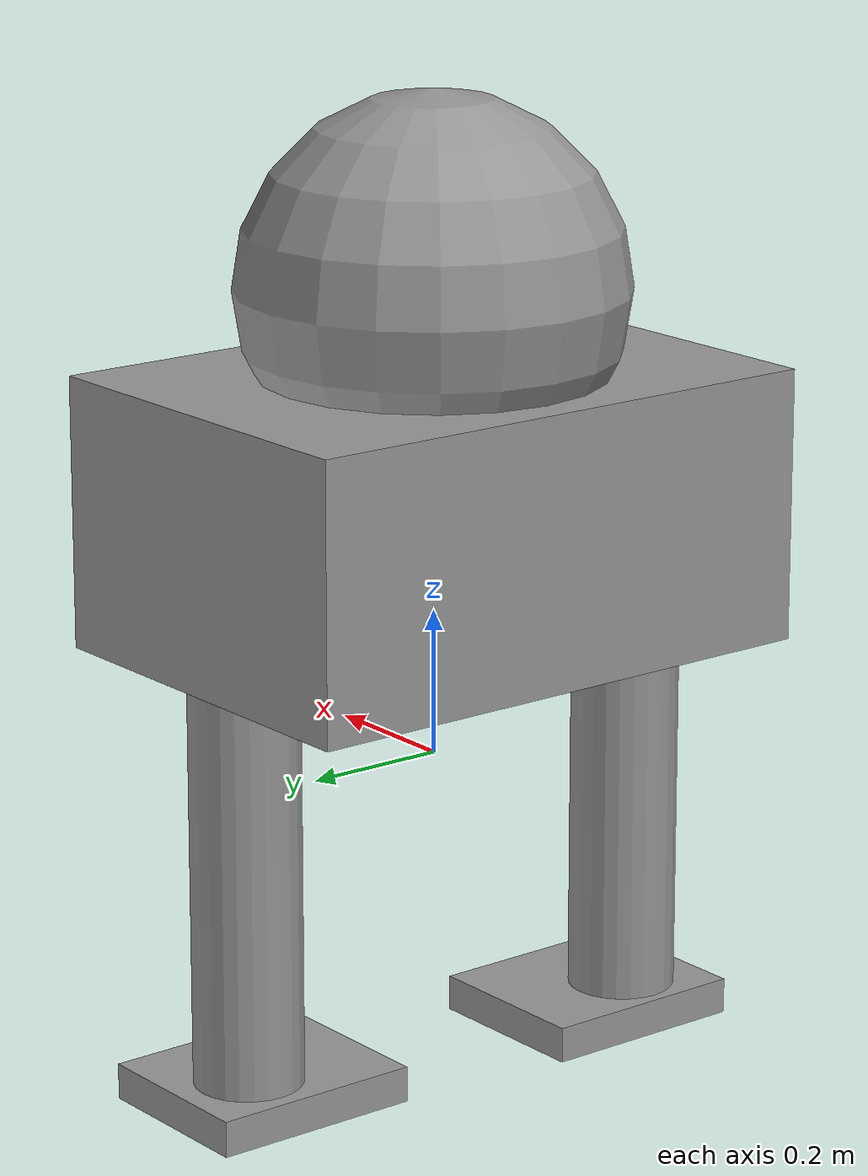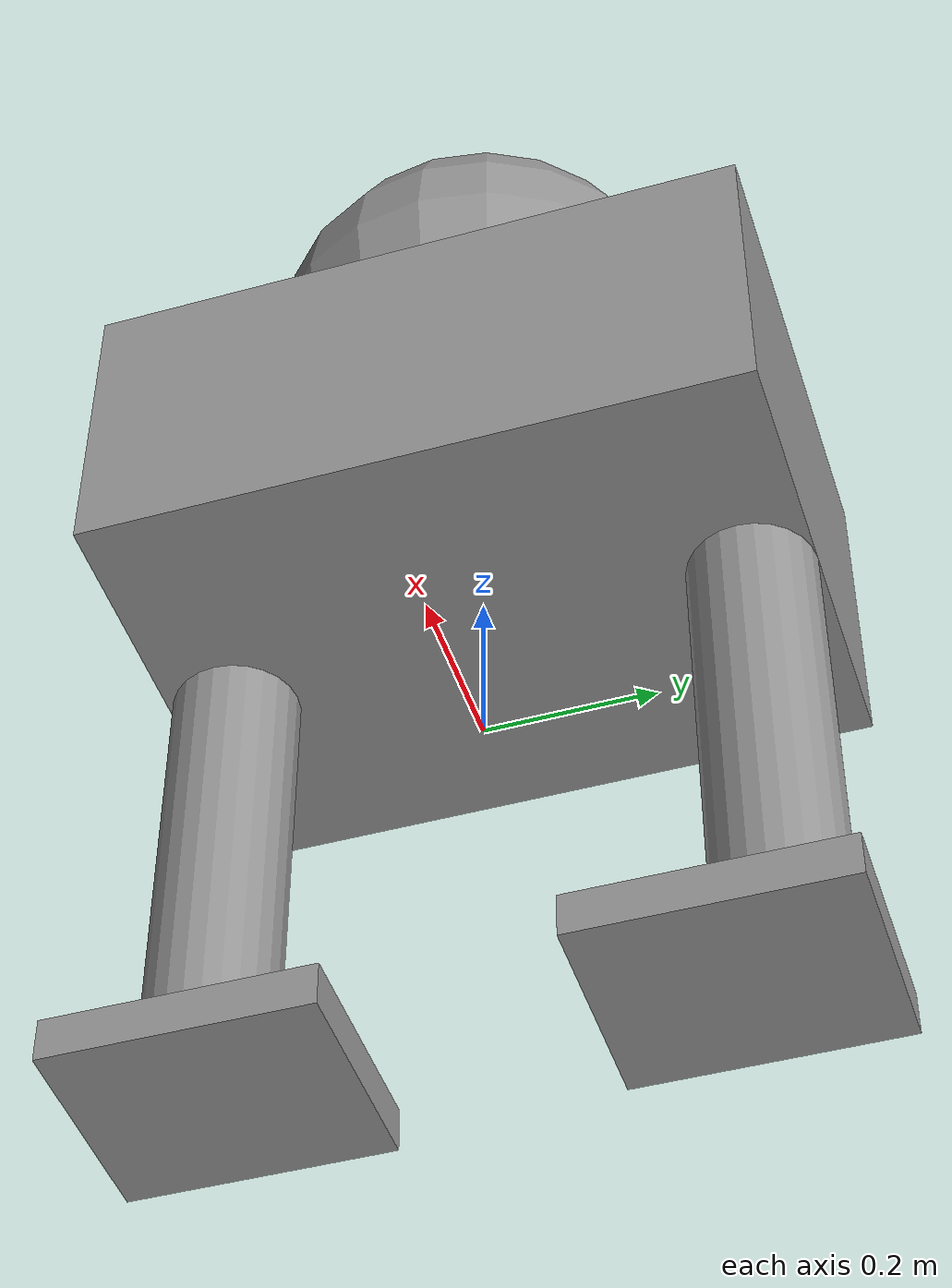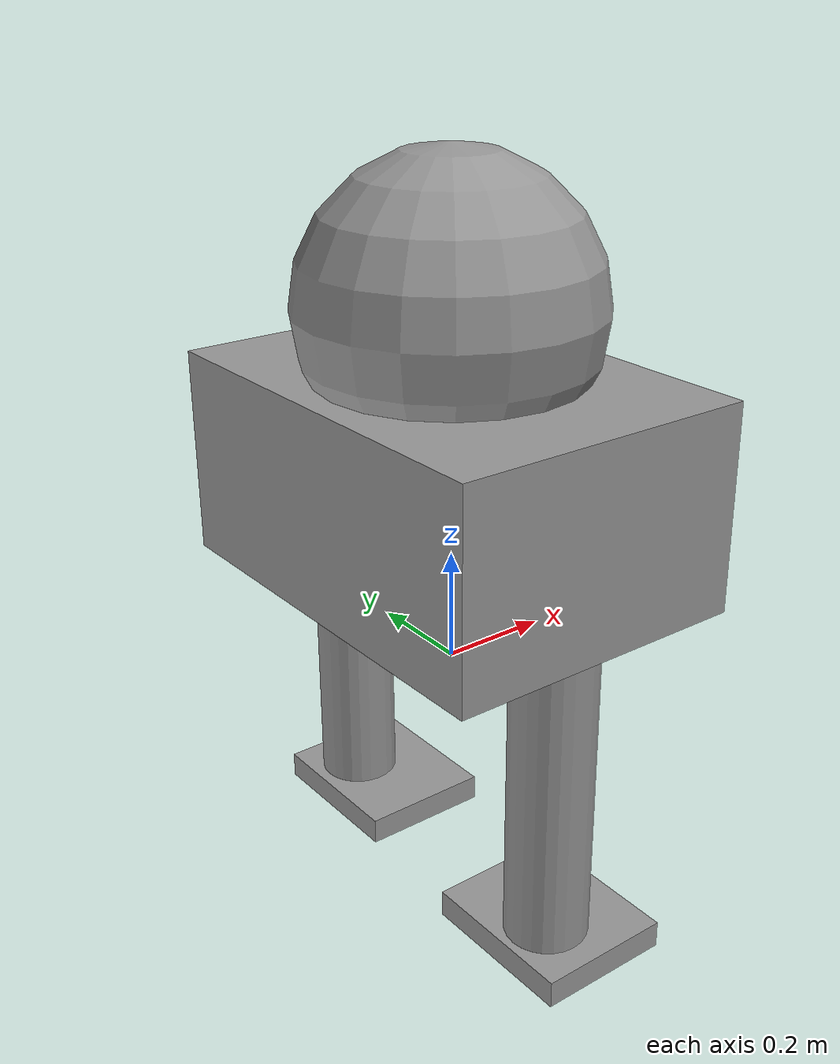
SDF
<?xml version='1.0'?>
<sdf version='1.6'>
  <model name='bot'>
    <link name='link_0'>
      <inertial>
        <mass>0.163841</mass>
        <inertia>
          <ixx>0.0101729</ixx>
          <ixy>0</ixy>
          <ixz>0</ixz>
          <iyy>0.0062362</iyy>
          <iyz>0</iyz>
          <izz>0.0125813</izz>
        </inertia>
        <pose frame=''>0 0 0.75 0 -0 0</pose>
      </inertial>
      <pose frame=''>2e-06 0.001849 0.341931 0 -0 0</pose>
      <gravity>1</gravity>
      <self_collide>0</self_collide>
      <kinematic>0</kinematic>
      <enable_wind>0</enable_wind>
      <visual name='visual'>
        <pose frame=''>0 0 0 0 -0 0</pose>
        <geometry>
          <box>
            <size>0.562647 0.777756 0.374404</size>
          </box>
        </geometry>
        <material>
          <lighting>1</lighting>
          <script>
            <uri>file://media/materials/scripts/gazebo.material</uri>
            <name>Gazebo/Grey</name>
          </script>
          <shader type='vertex'>
            <normal_map>__default__</normal_map>
          </shader>
          <ambient>0.3 0.3 0.3 1</ambient>
          <diffuse>0.7 0.7 0.7 1</diffuse>
          <specular>0.01 0.01 0.01 1</specular>
          <emissive>0 0 0 1</emissive>
        </material>
        <transparency>0</transparency>
        <cast_shadows>1</cast_shadows>
      </visual>
      <collision name='collision'>
        <laser_retro>0</laser_retro>
        <max_contacts>10</max_contacts>
        <pose frame=''>0 0 0 0 -0 0</pose>
        <geometry>
          <box>
            <size>0.562647 0.777756 0.374404</size>
          </box>
        </geometry>
        <surface>
          <friction>
            <ode>
              <mu>1</mu>
              <mu2>1</mu2>
              <fdir1>0 0 0</fdir1>
              <slip1>0</slip1>
              <slip2>0</slip2>
            </ode>
            <torsional>
              <coefficient>1</coefficient>
              <patch_radius>0</patch_radius>
              <surface_radius>0</surface_radius>
              <use_patch_radius>1</use_patch_radius>
              <ode>
                <slip>0</slip>
              </ode>
            </torsional>
          </friction>
          <bounce>
            <restitution_coefficient>0</restitution_coefficient>
            <threshold>1e+06</threshold>
          </bounce>
          <contact>
            <collide_without_contact>0</collide_without_contact>
            <collide_without_contact_bitmask>1</collide_without_contact_bitmask>
            <collide_bitmask>1</collide_bitmask>
            <ode>
              <soft_cfm>0</soft_cfm>
              <soft_erp>0.2</soft_erp>
              <kp>1e+13</kp>
              <kd>1</kd>
              <max_vel>0.01</max_vel>
              <min_depth>0</min_depth>
            </ode>
            <bullet>
              <split_impulse>1</split_impulse>
              <split_impulse_penetration_threshold>-0.01</split_impulse_penetration_threshold>
              <soft_cfm>0</soft_cfm>
              <soft_erp>0.2</soft_erp>
              <kp>1e+13</kp>
              <kd>1</kd>
            </bullet>
          </contact>
        </surface>
      </collision>
    </link>
    <link name='link_1'>
      <inertial>
        <mass>0.0187346</mass>
        <inertia>
          <ixx>0.0006021</ixx>
          <ixy>0</ixy>
          <ixz>0</ixz>
          <iyy>0.0006021</iyy>
          <iyz>0</iyz>
          <izz>7.273e-05</izz>
        </inertia>
        <pose frame=''>0 0 0 0 -0 0</pose>
      </inertial>
      <pose frame=''>-0.032498 -0.312029 -0.145271 0 -0 0</pose>
      <gravity>1</gravity>
      <self_collide>0</self_collide>
      <kinematic>0</kinematic>
      <enable_wind>0</enable_wind>
      <visual name='visual'>
        <pose frame=''>0 0 0 0 -0 0</pose>
        <geometry>
          <cylinder>
            <radius>0.075</radius>
            <length>0.6</length>
          </cylinder>
        </geometry>
        <material>
          <lighting>1</lighting>
          <script>
            <uri>file://media/materials/scripts/gazebo.material</uri>
            <name>Gazebo/Grey</name>
          </script>
          <shader type='vertex'>
            <normal_map>__default__</normal_map>
          </shader>
          <ambient>0.3 0.3 0.3 1</ambient>
          <diffuse>0.7 0.7 0.7 1</diffuse>
          <specular>0.01 0.01 0.01 1</specular>
          <emissive>0 0 0 1</emissive>
        </material>
        <transparency>0</transparency>
        <cast_shadows>1</cast_shadows>
      </visual>
      <collision name='collision'>
        <laser_retro>0</laser_retro>
        <max_contacts>10</max_contacts>
        <pose frame=''>0 0 0 0 -0 0</pose>
        <geometry>
          <cylinder>
            <radius>0.075</radius>
            <length>0.6</length>
          </cylinder>
        </geometry>
        <surface>
          <friction>
            <ode>
              <mu>1</mu>
              <mu2>1</mu2>
              <fdir1>0 0 0</fdir1>
              <slip1>0</slip1>
              <slip2>0</slip2>
            </ode>
            <torsional>
              <coefficient>1</coefficient>
              <patch_radius>0</patch_radius>
              <surface_radius>0</surface_radius>
              <use_patch_radius>1</use_patch_radius>
              <ode>
                <slip>0</slip>
              </ode>
            </torsional>
          </friction>
          <bounce>
            <restitution_coefficient>0</restitution_coefficient>
            <threshold>1e+06</threshold>
          </bounce>
          <contact>
            <collide_without_contact>0</collide_without_contact>
            <collide_without_contact_bitmask>1</collide_without_contact_bitmask>
            <collide_bitmask>1</collide_bitmask>
            <ode>
              <soft_cfm>0</soft_cfm>
              <soft_erp>0.2</soft_erp>
              <kp>1e+13</kp>
              <kd>1</kd>
              <max_vel>0.01</max_vel>
              <min_depth>0</min_depth>
            </ode>
            <bullet>
              <split_impulse>1</split_impulse>
              <split_impulse_penetration_threshold>-0.01</split_impulse_penetration_threshold>
              <soft_cfm>0</soft_cfm>
              <soft_erp>0.2</soft_erp>
              <kp>1e+13</kp>
              <kd>1</kd>
            </bullet>
          </contact>
        </surface>
      </collision>
    </link>
    <link name='link_1_clone'>
      <inertial>
        <mass>0.0187346</mass>
        <inertia>
          <ixx>0.000588384</ixx>
          <ixy>0</ixy>
          <ixz>0</ixz>
          <iyy>0.000588384</iyy>
          <iyz>0</iyz>
          <izz>5.26912e-05</izz>
        </inertia>
        <pose frame=''>0 0 0 0 -0 0</pose>
      </inertial>
      <pose frame=''>2e-06 0.315727 -0.145271 0 -0 0</pose>
      <gravity>1</gravity>
      <self_collide>0</self_collide>
      <kinematic>0</kinematic>
      <enable_wind>0</enable_wind>
      <visual name='visual'>
        <pose frame=''>0 0 0 0 -0 0</pose>
        <geometry>
          <cylinder>
            <radius>0.075</radius>
            <length>0.6</length>
          </cylinder>
        </geometry>
        <material>
          <lighting>1</lighting>
          <script>
            <uri>file://media/materials/scripts/gazebo.material</uri>
            <name>Gazebo/Grey</name>
          </script>
          <shader type='vertex'>
            <normal_map>__default__</normal_map>
          </shader>
          <ambient>0.3 0.3 0.3 1</ambient>
          <diffuse>0.7 0.7 0.7 1</diffuse>
          <specular>0.01 0.01 0.01 1</specular>
          <emissive>0 0 0 1</emissive>
        </material>
        <transparency>0</transparency>
        <cast_shadows>1</cast_shadows>
      </visual>
      <collision name='collision'>
        <laser_retro>0</laser_retro>
        <max_contacts>10</max_contacts>
        <pose frame=''>0 0 0 0 -0 0</pose>
        <geometry>
          <cylinder>
            <radius>0.075</radius>
            <length>0.6</length>
          </cylinder>
        </geometry>
        <surface>
          <friction>
            <ode>
              <mu>1</mu>
              <mu2>1</mu2>
              <fdir1>0 0 0</fdir1>
              <slip1>0</slip1>
              <slip2>0</slip2>
            </ode>
            <torsional>
              <coefficient>1</coefficient>
              <patch_radius>0</patch_radius>
              <surface_radius>0</surface_radius>
              <use_patch_radius>1</use_patch_radius>
              <ode>
                <slip>0</slip>
              </ode>
            </torsional>
          </friction>
          <bounce>
            <restitution_coefficient>0</restitution_coefficient>
            <threshold>1e+06</threshold>
          </bounce>
          <contact>
            <collide_without_contact>0</collide_without_contact>
            <collide_without_contact_bitmask>1</collide_without_contact_bitmask>
            <collide_bitmask>1</collide_bitmask>
            <ode>
              <soft_cfm>0</soft_cfm>
              <soft_erp>0.2</soft_erp>
              <kp>1e+13</kp>
              <kd>1</kd>
              <max_vel>0.01</max_vel>
              <min_depth>0</min_depth>
            </ode>
            <bullet>
              <split_impulse>1</split_impulse>
              <split_impulse_penetration_threshold>-0.01</split_impulse_penetration_threshold>
              <soft_cfm>0</soft_cfm>
              <soft_erp>0.2</soft_erp>
              <kp>1e+13</kp>
              <kd>1</kd>
            </bullet>
          </contact>
        </surface>
      </collision>
    </link>
    <link name='link_3'>
      <inertial>
        <mass>0.00152232</mass>
        <inertia>
          <ixx>2.28e-06</ixx>
          <ixy>0</ixy>
          <ixz>0</ixz>
          <iyy>6.66e-06</iyy>
          <iyz>0</iyz>
          <izz>8.12e-06</izz>
        </inertia>
        <pose frame=''>0 0 0 0 -0 0</pose>
      </inertial>
      <pose frame=''>0.029437 0.272135 -0.42295 0 -0 0</pose>
      <self_collide>0</self_collide>
      <enable_wind>0</enable_wind>
      <kinematic>0</kinematic>
      <gravity>1</gravity>
      <visual name='visual'>
        <pose frame=''>0 0 0 0 -0 0</pose>
        <geometry>
          <box>
            <size>0.25 0.299999 0.05</size>
          </box>
        </geometry>
        <material>
          <lighting>1</lighting>
          <script>
            <uri>file://media/materials/scripts/gazebo.material</uri>
            <name>Gazebo/Grey</name>
          </script>
          <emissive>0 0 0 1</emissive>
          <shader type='vertex'>
            <normal_map>__default__</normal_map>
          </shader>
          <ambient>0.3 0.3 0.3 1</ambient>
          <diffuse>0.7 0.7 0.7 1</diffuse>
          <specular>0.01 0.01 0.01 1</specular>
        </material>
        <transparency>0</transparency>
        <cast_shadows>1</cast_shadows>
      </visual>
      <collision name='collision'>
        <laser_retro>0</laser_retro>
        <max_contacts>10</max_contacts>
        <pose frame=''>0 0 0 0 -0 0</pose>
        <geometry>
          <box>
            <size>0.25 0.3 0.05</size>
          </box>
        </geometry>
        <surface>
          <friction>
            <ode>
              <mu>1</mu>
              <mu2>1</mu2>
              <fdir1>0 0 0</fdir1>
              <slip1>0</slip1>
              <slip2>0</slip2>
            </ode>
            <torsional>
              <coefficient>1</coefficient>
              <patch_radius>0</patch_radius>
              <surface_radius>0</surface_radius>
              <use_patch_radius>1</use_patch_radius>
              <ode>
                <slip>0</slip>
              </ode>
            </torsional>
          </friction>
          <bounce>
            <restitution_coefficient>0</restitution_coefficient>
            <threshold>1e+06</threshold>
          </bounce>
          <contact>
            <collide_without_contact>0</collide_without_contact>
            <collide_without_contact_bitmask>1</collide_without_contact_bitmask>
            <collide_bitmask>1</collide_bitmask>
            <ode>
              <soft_cfm>0</soft_cfm>
              <soft_erp>0.2</soft_erp>
              <kp>1e+13</kp>
              <kd>1</kd>
              <max_vel>0.01</max_vel>
              <min_depth>0</min_depth>
            </ode>
            <bullet>
              <split_impulse>1</split_impulse>
              <split_impulse_penetration_threshold>-0.01</split_impulse_penetration_threshold>
              <soft_cfm>0</soft_cfm>
              <soft_erp>0.2</soft_erp>
              <kp>1e+13</kp>
              <kd>1</kd>
            </bullet>
          </contact>
        </surface>
      </collision>
    </link>
    <link name='link_3_clone'>
      <inertial>
        <mass>0.00098487</mass>
        <inertia>
          <ixx>1.08e-06</ixx>
          <ixy>0</ixy>
          <ixz>0</ixz>
          <iyy>3.74e-06</iyy>
          <iyz>0</iyz>
          <izz>4.5e-06</izz>
        </inertia>
        <pose frame=''>0 0 0 0 -0 0</pose>
      </inertial>
      <pose frame=''>0.003067 -0.279529 -0.42295 0 -0 0</pose>
      <self_collide>0</self_collide>
      <enable_wind>0</enable_wind>
      <kinematic>0</kinematic>
      <gravity>1</gravity>
      <visual name='visual'>
        <pose frame=''>0 0 0 0 -0 0</pose>
        <geometry>
          <box>
            <size>0.25 0.3 0.05</size>
          </box>
        </geometry>
        <material>
          <lighting>1</lighting>
          <script>
            <uri>file://media/materials/scripts/gazebo.material</uri>
            <name>Gazebo/Grey</name>
          </script>
          <emissive>0 0 0 1</emissive>
          <shader type='pixel'>
            <normal_map>__default__</normal_map>
          </shader>
          <ambient>0.3 0.3 0.3 1</ambient>
          <diffuse>0.7 0.7 0.7 1</diffuse>
          <specular>0.01 0.01 0.01 1</specular>
        </material>
        <transparency>0</transparency>
        <cast_shadows>1</cast_shadows>
      </visual>
      <collision name='collision'>
        <laser_retro>0</laser_retro>
        <max_contacts>10</max_contacts>
        <pose frame=''>0 0 0 0 -0 0</pose>
        <geometry>
          <box>
            <size>0.25 0.3 0.05</size>
          </box>
        </geometry>
        <surface>
          <friction>
            <ode>
              <mu>1</mu>
              <mu2>1</mu2>
              <fdir1>0 0 0</fdir1>
              <slip1>0</slip1>
              <slip2>0</slip2>
            </ode>
            <torsional>
              <coefficient>1</coefficient>
              <patch_radius>0</patch_radius>
              <surface_radius>0</surface_radius>
              <use_patch_radius>1</use_patch_radius>
              <ode>
                <slip>0</slip>
              </ode>
            </torsional>
          </friction>
          <bounce>
            <restitution_coefficient>0</restitution_coefficient>
            <threshold>1e+06</threshold>
          </bounce>
          <contact>
            <collide_without_contact>0</collide_without_contact>
            <collide_without_contact_bitmask>1</collide_without_contact_bitmask>
            <collide_bitmask>1</collide_bitmask>
            <ode>
              <soft_cfm>0</soft_cfm>
              <soft_erp>0.2</soft_erp>
              <kp>1e+13</kp>
              <kd>1</kd>
              <max_vel>0.01</max_vel>
              <min_depth>0</min_depth>
            </ode>
            <bullet>
              <split_impulse>1</split_impulse>
              <split_impulse_penetration_threshold>-0.01</split_impulse_penetration_threshold>
              <soft_cfm>0</soft_cfm>
              <soft_erp>0.2</soft_erp>
              <kp>1e+13</kp>
              <kd>1</kd>
            </bullet>
          </contact>
        </surface>
      </collision>
    </link>
    <link name='link_4'>
      <inertial>
        <mass>0.149515</mass>
        <inertia>
          <ixx>0.0042119</ixx>
          <ixy>0</ixy>
          <ixz>0</ixz>
          <iyy>0.0042119</iyy>
          <iyz>0</iyz>
          <izz>0.0042119</izz>
        </inertia>
        <pose frame=''>0 0 0 0 -0 0</pose>
      </inertial>
      <pose frame=''>2e-06 0.001849 0.641931 0 -0 0</pose>
      <gravity>1</gravity>
      <self_collide>0</self_collide>
      <kinematic>0</kinematic>
      <enable_wind>0</enable_wind>
      <visual name='visual'>
        <pose frame=''>0 0 0 0 -0 0</pose>
        <geometry>
          <sphere>
            <radius>0.265379</radius>
          </sphere>
        </geometry>
        <material>
          <lighting>1</lighting>
          <script>
            <uri>file://media/materials/scripts/gazebo.material</uri>
            <name>Gazebo/Grey</name>
          </script>
          <shader type='vertex'>
            <normal_map>__default__</normal_map>
          </shader>
          <emissive>0 0 0 1</emissive>
        </material>
        <transparency>0</transparency>
        <cast_shadows>1</cast_shadows>
      </visual>
      <collision name='collision'>
        <laser_retro>0</laser_retro>
        <max_contacts>10</max_contacts>
        <pose frame=''>0 0 0 0 -0 0</pose>
        <geometry>
          <sphere>
            <radius>0.265379</radius>
          </sphere>
        </geometry>
        <surface>
          <friction>
            <ode>
              <mu>1</mu>
              <mu2>1</mu2>
              <fdir1>0 0 0</fdir1>
              <slip1>0</slip1>
              <slip2>0</slip2>
            </ode>
            <torsional>
              <coefficient>1</coefficient>
              <patch_radius>0</patch_radius>
              <surface_radius>0</surface_radius>
              <use_patch_radius>1</use_patch_radius>
              <ode>
                <slip>0</slip>
              </ode>
            </torsional>
          </friction>
          <bounce>
            <restitution_coefficient>0</restitution_coefficient>
            <threshold>1e+06</threshold>
          </bounce>
          <contact>
            <collide_without_contact>0</collide_without_contact>
            <collide_without_contact_bitmask>1</collide_without_contact_bitmask>
            <collide_bitmask>1</collide_bitmask>
            <ode>
              <soft_cfm>0</soft_cfm>
              <soft_erp>0.2</soft_erp>
              <kp>1e+13</kp>
              <kd>1</kd>
              <max_vel>0.01</max_vel>
              <min_depth>0</min_depth>
            </ode>
            <bullet>
              <split_impulse>1</split_impulse>
              <split_impulse_penetration_threshold>-0.01</split_impulse_penetration_threshold>
              <soft_cfm>0</soft_cfm>
              <soft_erp>0.2</soft_erp>
              <kp>1e+13</kp>
              <kd>1</kd>
            </bullet>
          </contact>
        </surface>
      </collision>
    </link>
    <joint name='link_0_JOINT_3' type='fixed'>
      <parent>link_0</parent>
      <child>link_1_clone</child>
      <pose frame=''>0 0 0 0 -0 0</pose>
      <physics>
        <ode>
          <limit>
            <cfm>0</cfm>
            <erp>0.2</erp>
          </limit>
          <suspension>
            <cfm>0</cfm>
            <erp>0.2</erp>
          </suspension>
        </ode>
      </physics>
    </joint>
    <joint name='link_0_JOINT_4' type='fixed'>
      <parent>link_0</parent>
      <child>link_1</child>
      <pose frame=''>0 0 0 0 -0 0</pose>
      <physics>
        <ode>
          <limit>
            <cfm>0</cfm>
            <erp>0.2</erp>
          </limit>
          <suspension>
            <cfm>0</cfm>
            <erp>0.2</erp>
          </suspension>
        </ode>
      </physics>
    </joint>
    <joint name='link_0_JOINT_7' type='ball'>
      <parent>link_0</parent>
      <child>link_4</child>
      <pose frame=''>0 0 0 0 -0 0</pose>
      <physics>
        <ode>
          <limit>
            <cfm>0</cfm>
            <erp>0.2</erp>
          </limit>
          <suspension>
            <cfm>0</cfm>
            <erp>0.2</erp>
          </suspension>
        </ode>
      </physics>
    </joint>
    <joint name='link_1_JOINT_6' type='revolute'>
      <parent>link_1</parent>
      <child>link_3_clone</child>
      <pose frame=''>0 0 0 0 -0 0</pose>
      <axis>
        <xyz>0 1 0</xyz>
        <use_parent_model_frame>0</use_parent_model_frame>
        <limit>
          <lower>-1.79769e+308</lower>
          <upper>1.79769e+308</upper>
          <effort>-1</effort>
          <velocity>-1</velocity>
        </limit>
        <dynamics>
          <spring_reference>0</spring_reference>
          <spring_stiffness>0</spring_stiffness>
          <damping>0</damping>
          <friction>0</friction>
        </dynamics>
      </axis>
      <physics>
        <ode>
          <limit>
            <cfm>0</cfm>
            <erp>0.2</erp>
          </limit>
          <suspension>
            <cfm>0</cfm>
            <erp>0.2</erp>
          </suspension>
        </ode>
      </physics>
    </joint>
    <joint name='link_1_clone_JOINT_5' type='revolute'>
      <parent>link_1_clone</parent>
      <child>link_3</child>
      <pose frame=''>0 0 0 0 -0 0</pose>
      <axis>
        <xyz>0 1 0</xyz>
        <use_parent_model_frame>0</use_parent_model_frame>
        <limit>
          <lower>-1.79769e+308</lower>
          <upper>1.79769e+308</upper>
          <effort>-1</effort>
          <velocity>-1</velocity>
        </limit>
        <dynamics>
          <spring_reference>0</spring_reference>
          <spring_stiffness>0</spring_stiffness>
          <damping>0</damping>
          <friction>0</friction>
        </dynamics>
      </axis>
      <physics>
        <ode>
          <limit>
            <cfm>0</cfm>
            <erp>0.2</erp>
          </limit>
          <suspension>
            <cfm>0</cfm>
            <erp>0.2</erp>
          </suspension>
        </ode>
      </physics>
    </joint>
    <static>0</static>
    <allow_auto_disable>1</allow_auto_disable>
  </model>
</sdf>
